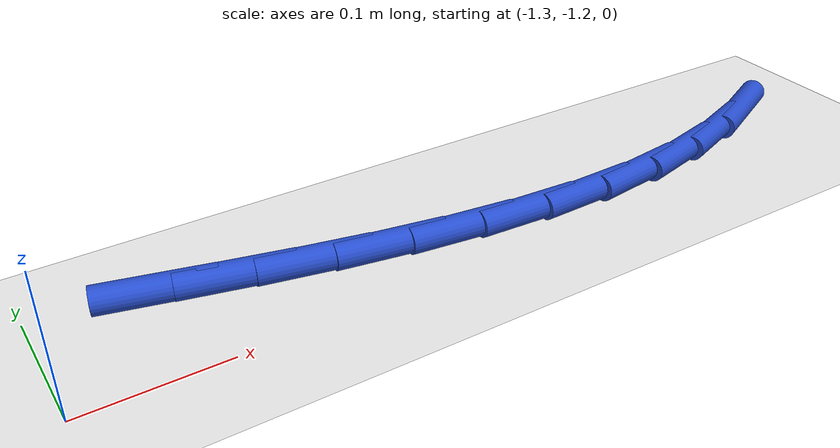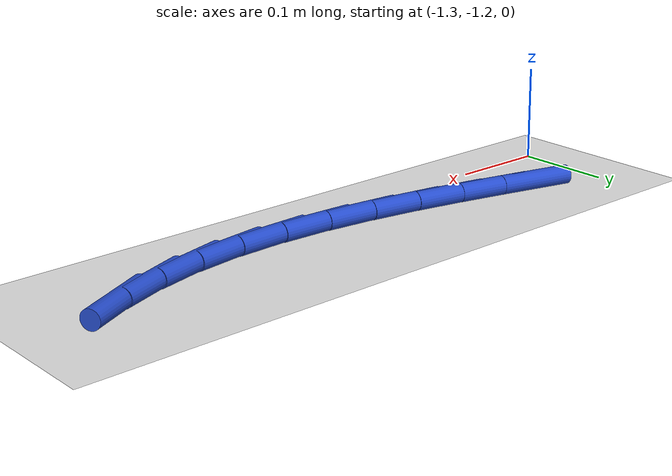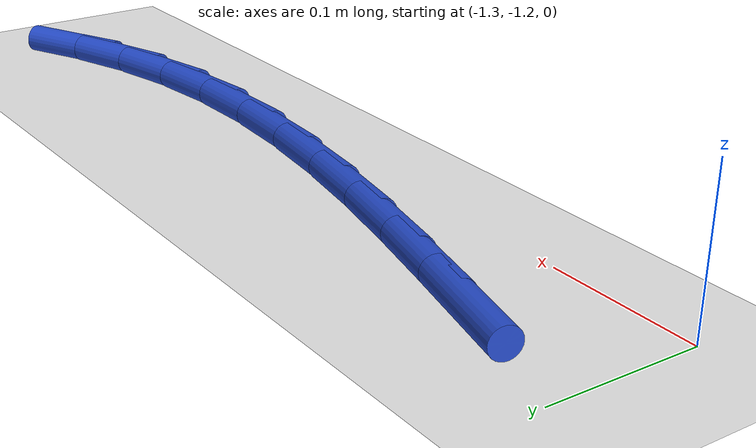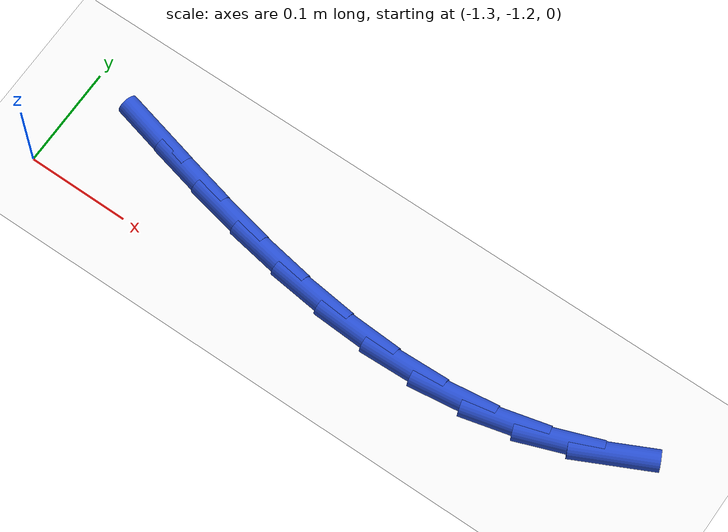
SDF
<sdf version="1.6">
 <world name="default">
  <model name="ground_plane">
   <static>1</static>
   <link name="link">
    <collision name="collision">
     <geometry><plane><normal>0 0 1</normal><size>100 100</size></plane></geometry>
     <surface><friction><ode><mu>100</mu><mu2>50</mu2></ode></friction></surface>
    </collision>
    <visual name="visual">
     <cast_shadows>0</cast_shadows>
     <geometry><plane><normal>0 0 1</normal><size>100 100</size></plane></geometry>
     <material>
      <script><uri>file://media/materials/scripts/gazebo.material</uri><name>Gazebo/WhiteGlow</name></script>
     </material>
    </visual>
   </link>
  </model>
  <model name="line">
   <link name="link_133">
    <pose>-1.2213815001198702 -1.121433158317687 0.01 0 1.57 -0.25050511989957175</pose>
    <collision name="collision">
     <geometry><cylinder><radius>0.01</radius><length>0.08</length></cylinder></geometry>
    </collision>
    <visual name="visual">
     <material>
      <script><name>Gazebo/Blue</name><uri>file://media/materials/scripts/gazebo.material</uri></script>
     </material>
     <geometry><cylinder><radius>0.01</radius><length>0.08</length></cylinder></geometry>
    </visual>
   </link>
   <link name="link_134">
    <pose>-1.1724424202216581 -1.1339556922420064 0.01 0 1.57 -0.23793029683936023</pose>
    <collision name="collision">
     <geometry><cylinder><radius>0.01</radius><length>0.08</length></cylinder></geometry>
    </collision>
    <visual name="visual">
     <material>
      <script><name>Gazebo/Blue</name><uri>file://media/materials/scripts/gazebo.material</uri></script>
     </material>
     <geometry><cylinder><radius>0.01</radius><length>0.08</length></cylinder></geometry>
    </visual>
   </link>
   <link name="link_135">
    <pose>-1.1223629025705453 -1.1461011852003062 0.01 0 1.57 -0.20912172001358056</pose>
    <collision name="collision">
     <geometry><cylinder><radius>0.01</radius><length>0.08</length></cylinder></geometry>
    </collision>
    <visual name="visual">
     <material>
      <script><name>Gazebo/Blue</name><uri>file://media/materials/scripts/gazebo.material</uri></script>
     </material>
     <geometry><cylinder><radius>0.01</radius><length>0.08</length></cylinder></geometry>
    </visual>
   </link>
   <link name="link_136">
    <pose>-1.071280247212743 -1.1569421729236364 0.01 0 1.57 -0.16937781837727267</pose>
    <collision name="collision">
     <geometry><cylinder><radius>0.01</radius><length>0.08</length></cylinder></geometry>
    </collision>
    <visual name="visual">
     <material>
      <script><name>Gazebo/Blue</name><uri>file://media/materials/scripts/gazebo.material</uri></script>
     </material>
     <geometry><cylinder><radius>0.01</radius><length>0.08</length></cylinder></geometry>
    </visual>
   </link>
   <link name="link_137">
    <pose>-1.019670390500203 -1.1657683035649693 0.01 0 1.57 -0.11755075250345218</pose>
    <collision name="collision">
     <geometry><cylinder><radius>0.01</radius><length>0.08</length></cylinder></geometry>
    </collision>
    <visual name="visual">
     <material>
      <script><name>Gazebo/Blue</name><uri>file://media/materials/scripts/gazebo.material</uri></script>
     </material>
     <geometry><cylinder><radius>0.01</radius><length>0.08</length></cylinder></geometry>
    </visual>
   </link>
   <link name="link_138">
    <pose>-0.9680092808950558 -1.1718692330415703 0.01 0 1.57 -0.05197443671146962</pose>
    <collision name="collision">
     <geometry><cylinder><radius>0.01</radius><length>0.08</length></cylinder></geometry>
    </collision>
    <visual name="visual">
     <material>
      <script><name>Gazebo/Blue</name><uri>file://media/materials/scripts/gazebo.material</uri></script>
     </material>
     <geometry><cylinder><radius>0.01</radius><length>0.08</length></cylinder></geometry>
    </visual>
   </link>
   <link name="link_139">
    <pose>-0.9167728668594336 -1.1745346172707052 0.01 0 1.57 0.0294041075367341</pose>
    <collision name="collision">
     <geometry><cylinder><radius>0.01</radius><length>0.08</length></cylinder></geometry>
    </collision>
    <visual name="visual">
     <material>
      <script><name>Gazebo/Blue</name><uri>file://media/materials/scripts/gazebo.material</uri></script>
     </material>
     <geometry><cylinder><radius>0.01</radius><length>0.08</length></cylinder></geometry>
    </visual>
   </link>
   <link name="link_140">
    <pose>-0.8664370968554671 -1.173054112169638 0.01 0 1.57 0.12871244731830594</pose>
    <collision name="collision">
     <geometry><cylinder><radius>0.01</radius><length>0.08</length></cylinder></geometry>
    </collision>
    <visual name="visual">
     <material>
      <script><name>Gazebo/Blue</name><uri>file://media/materials/scripts/gazebo.material</uri></script>
     </material>
     <geometry><cylinder><radius>0.01</radius><length>0.08</length></cylinder></geometry>
    </visual>
   </link>
   <link name="link_141">
    <pose>-0.8174778953526415 -1.1667174217227392 0.01 0 1.57 0.2423814833160449</pose>
    <collision name="collision">
     <geometry><cylinder><radius>0.01</radius><length>0.08</length></cylinder></geometry>
    </collision>
    <visual name="visual">
     <material>
      <script><name>Gazebo/Blue</name><uri>file://media/materials/scripts/gazebo.material</uri></script>
     </material>
     <geometry><cylinder><radius>0.01</radius><length>0.08</length></cylinder></geometry>
    </visual>
   </link>
   <link name="link_142">
    <pose>-0.7702572635021796 -1.1550424850021015 0.01 0 1.57 0.3525514802255661</pose>
    <collision name="collision">
     <geometry><cylinder><radius>0.01</radius><length>0.08</length></cylinder></geometry>
    </collision>
    <visual name="visual">
     <material>
      <script><name>Gazebo/Blue</name><uri>file://media/materials/scripts/gazebo.material</uri></script>
     </material>
     <geometry><cylinder><radius>0.01</radius><length>0.08</length></cylinder></geometry>
    </visual>
   </link>
   <link name="link_143">
    <pose>-0.7247599666658158 -1.1383029989424098 0.01 0 1.57 0.4533926991917315</pose>
    <collision name="collision">
     <geometry><cylinder><radius>0.01</radius><length>0.08</length></cylinder></geometry>
    </collision>
    <visual name="visual">
     <material>
      <script><name>Gazebo/Blue</name><uri>file://media/materials/scripts/gazebo.material</uri></script>
     </material>
     <geometry><cylinder><radius>0.01</radius><length>0.08</length></cylinder></geometry>
    </visual>
   </link>
  </model>
 </world>
</sdf>
